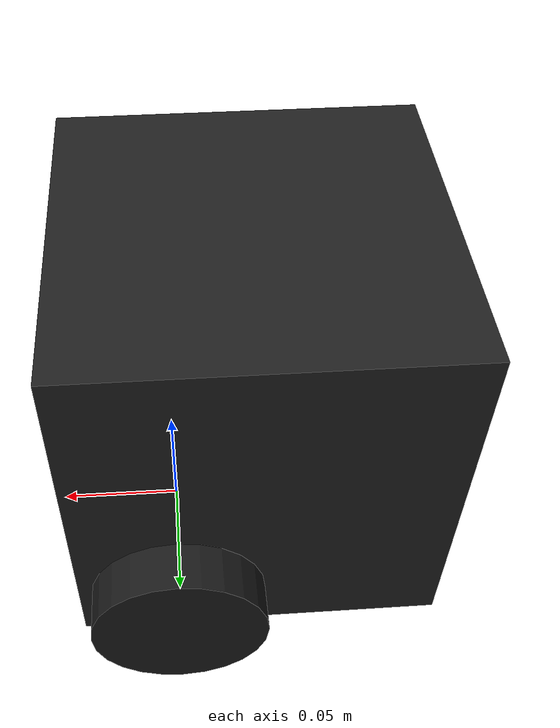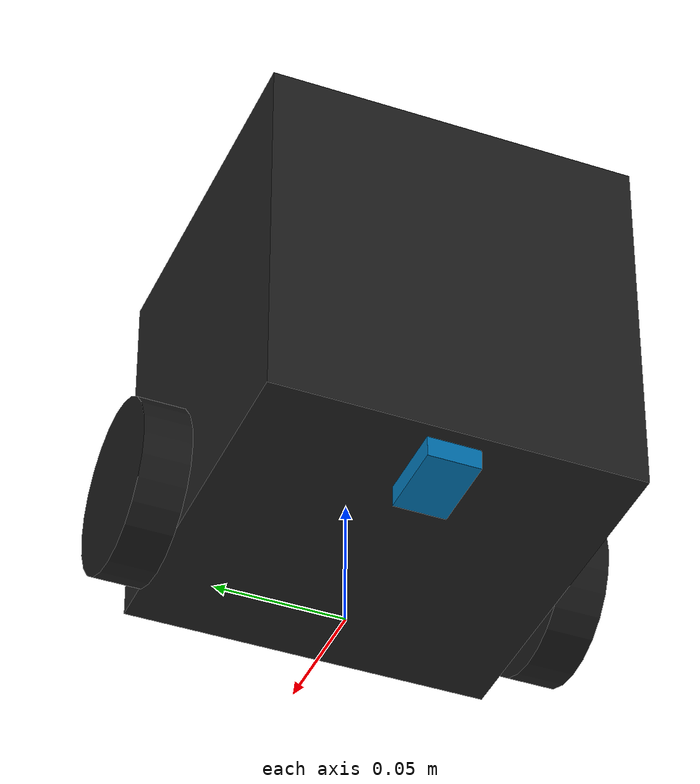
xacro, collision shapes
<?xml version="1.0" ?>
<robot name="turtlebot3_burger" xmlns:xacro="http://ros.org/wiki/xacro">
  <xacro:include filename="$(find turtlebot3_description)/urdf/common_properties.xacro"/>
  <xacro:include filename="$(find turtlebot3_description)/urdf/turtlebot3_burger.gazebo.xacro"/>

  <link name="base_footprint"/>

  <joint name="base_joint" type="fixed">
    <parent link="base_footprint"/>
    <child link="base_link"/>
    <origin xyz="0.0 0.0 0.010" rpy="0 0 0"/>
  </joint>

  <link name="base_link">
    <visual>
      <origin xyz="-0.032 0 0.0" rpy="0 0 0"/>
      <geometry>
        <mesh filename="package://turtlebot3_description/meshes/bases/burger_base.stl" scale="0.001 0.001 0.001"/>
      </geometry>
      <material name="light_black"/>
    </visual>
    <collision>
      <origin xyz="-0.032 0 0.070" rpy="0 0 0"/>
      <geometry>
        <box size="0.140 0.140 0.143"/>
      </geometry>
    </collision>
    <inertial>
      <origin xyz="0 0 0" rpy="0 0 0"/>
      <mass value="8.2573504e-01"/>
      <inertia ixx="2.2124416e-03" ixy="-1.2294101e-05" ixz="3.4938785e-05"
               iyy="2.1193702e-03" iyz="-5.0120904e-06"
               izz="2.0064271e-03" />
    </inertial>
  </link>

  <joint name="wheel_left_joint" type="continuous">
    <parent link="base_link"/>
    <child link="wheel_left_link"/>
    <origin xyz="0.0 0.08 0.023" rpy="-1.57 0 0"/>
    <axis xyz="0 0 1"/>
  </joint>

  <link name="wheel_left_link">
    <visual>
      <origin xyz="0 0 0" rpy="1.57 0 0"/>
      <geometry>
        <mesh filename="package://turtlebot3_description/meshes/wheels/left_tire.stl" scale="0.001 0.001 0.001"/>
      </geometry>
      <material name="dark"/>
    </visual>
    <collision>
      <origin xyz="0 0 0" rpy="0 0 0"/>
      <geometry>
        <cylinder length="0.018" radius="0.033"/>
      </geometry>
    </collision>
    <inertial>
      <origin xyz="0 0 0" />
      <mass value="2.8498940e-02" />
      <inertia ixx="1.1175580e-05" ixy="-4.2369783e-11" ixz="-5.9381719e-09"
               iyy="1.1192413e-05" iyz="-1.4400107e-11"
               izz="2.0712558e-05" />
    </inertial>
  </link>

  <joint name="wheel_right_joint" type="continuous">
    <parent link="base_link"/>
    <child link="wheel_right_link"/>
    <origin xyz="0.0 -0.080 0.023" rpy="-1.57 0 0"/>
    <axis xyz="0 0 1"/>
  </joint>

  <link name="wheel_right_link">
    <visual>
      <origin xyz="0 0 0" rpy="1.57 0 0"/>
      <geometry>
        <mesh filename="package://turtlebot3_description/meshes/wheels/right_tire.stl" scale="0.001 0.001 0.001"/>
      </geometry>
      <material name="dark"/>
    </visual>
    <collision>
      <origin xyz="0 0 0" rpy="0 0 0"/>
      <geometry>
        <cylinder length="0.018" radius="0.033"/>
      </geometry>
    </collision>
    <inertial>
      <origin xyz="0 0 0" />
      <mass value="2.8498940e-02" />
      <inertia ixx="1.1175580e-05" ixy="-4.2369783e-11" ixz="-5.9381719e-09"
               iyy="1.1192413e-05" iyz="-1.4400107e-11"
               izz="2.0712558e-05" />
    </inertial>
  </link>

  <joint name="caster_back_joint" type="fixed">
    <parent link="base_link"/>
    <child link="caster_back_link"/>
    <origin xyz="-0.081 0 -0.004" rpy="-1.57 0 0"/>
  </joint>

  <link name="caster_back_link">
    <collision>
      <origin xyz="0 0.001 0" rpy="0 0 0"/>
      <geometry>
        <box size="0.030 0.009 0.020"/>
      </geometry>
    </collision>
    <inertial>
      <origin xyz="0 0 0" />
      <mass value="0.005" />
      <inertia ixx="0.001" ixy="0.0" ixz="0.0"
               iyy="0.001" iyz="0.0"
               izz="0.001" />
    </inertial>
  </link>

  <joint name="imu_joint" type="fixed">
    <parent link="base_link"/>
    <child link="imu_link"/>
    <origin xyz="-0.032 0 0.068" rpy="0 0 0"/>
  </joint>

  <link name="imu_link"/>

  <joint name="scan_joint" type="fixed">
    <parent link="base_link"/>
    <child link="base_scan"/>
    <origin xyz="-0.032 0 0.030" rpy="0 0 0"/>
  </joint>

  <link name="base_scan">
    <visual>
      <origin xyz="0 0 0.0" rpy="0 0 0"/>
      <geometry>
        <mesh filename="package://turtlebot3_description/meshes/sensors/lds.stl" scale="0.001 0.001 0.001"/>
      </geometry>
      <material name="dark"/>
    </visual>
    <collision>
      <origin xyz="0.015 0 -0.0065" rpy="0 0 0"/>
      <geometry>
        <cylinder length="0.0315" radius="0.055"/>
      </geometry>
    </collision>
    <inertial>
      <mass value="0.114" />
      <origin xyz="0 0 0" />
      <inertia ixx="0.001" ixy="0.0" ixz="0.0"
               iyy="0.001" iyz="0.0"
               izz="0.001" />
    </inertial>
  </link>

  <!-- ========== Camera (middle layer center, facing forward) ========== -->
  <joint name="camera_joint" type="fixed">
    <parent link="base_link"/>
    <child link="camera_link"/>
    <origin xyz="-0.032 0 0.105" rpy="0 0 1.5708"/>
  </joint>

  <link name="camera_link">
    <visual>
      <geometry>
        <box size="0.04 0.04 0.03"/>
      </geometry>
      <material name="dark">
        <color rgba="0.1 0.1 0.1 1"/>
      </material>
    </visual>
    <collision>
      <geometry>
        <box size="0.04 0.04 0.03"/>
      </geometry>
    </collision>
    <inertial>
      <mass value="0.01"/>
      <inertia ixx="0.0001" ixy="0" ixz="0"
               iyy="0.0001" iyz="0"
               izz="0.0001"/>
    </inertial>
  </link>

  <gazebo reference="camera_link">
    <material>Gazebo/Black</material>
  </gazebo>

  <gazebo reference="camera_link">
    <sensor type="camera" name="camera">
      <always_on>true</always_on>
      <update_rate>30</update_rate>
      <camera name="turtlebot3_camera">
        <horizontal_fov>1.047</horizontal_fov>
        <image>
          <width>640</width>
          <height>480</height>
          <format>R8G8B8</format>
        </image>
        <clip>
          <near>0.1</near>
          <far>10.0</far>
        </clip>
      </camera>
      <plugin name="camera_controller" filename="libgazebo_ros_camera.so">
        <frame_name>camera_link</frame_name>
        <image_topicName>image_raw</image_topicName>
        <camera_info_topicName>camera_info</camera_info_topicName>
      </plugin>
    </sensor>
  </gazebo>

</robot>
